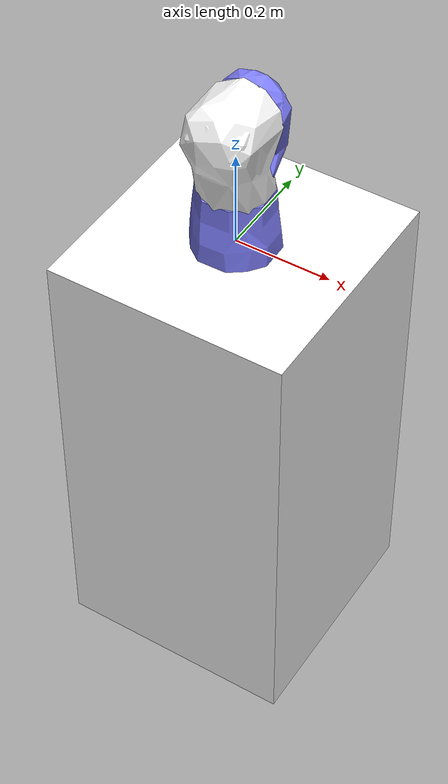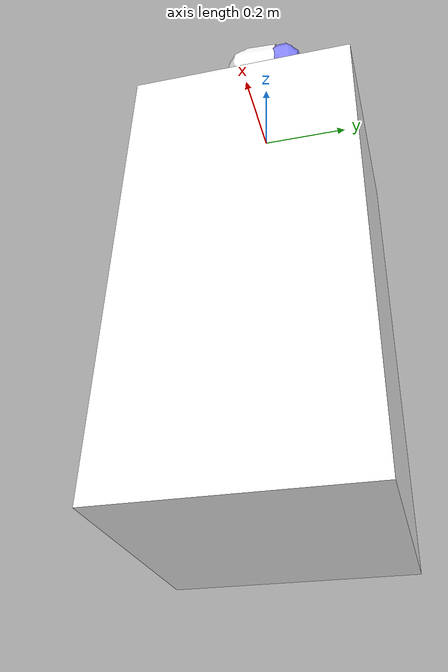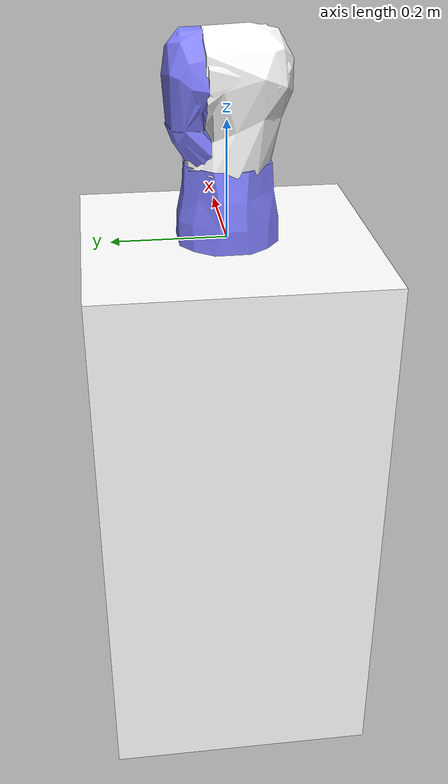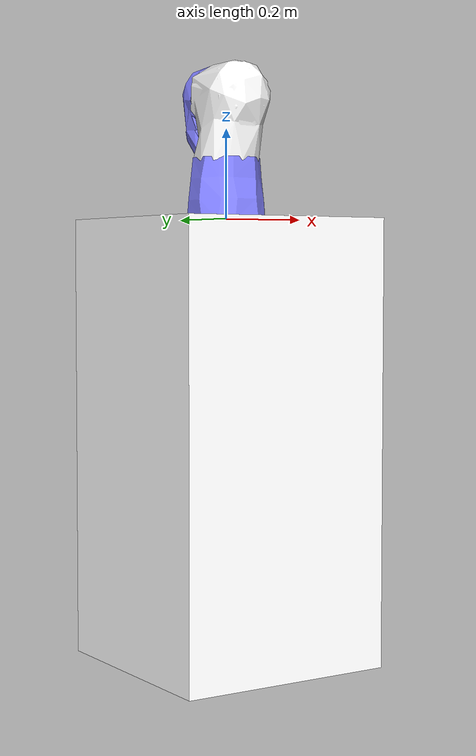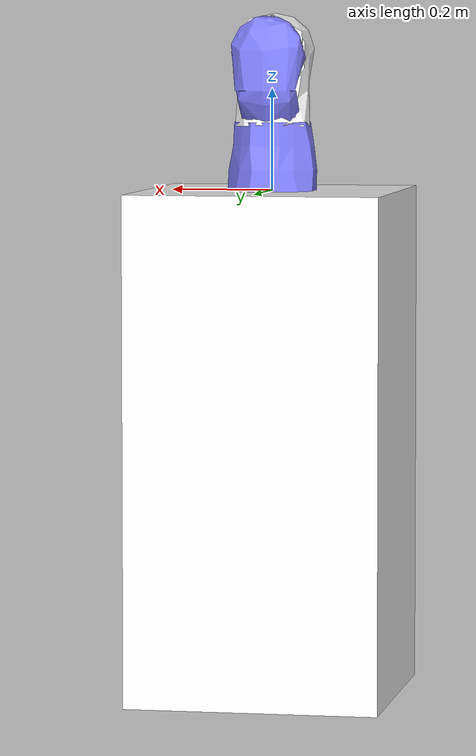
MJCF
<mujoco model="optimo">
  <compiler angle="radian" meshdir="../urdf/meshes/"/>
  <option gravity="0 0 -9.81" timestep="0.001" solver="Newton" tolerance="1e-12" impratio="60.0"/>

  <!-- Disable self-collision for robot geoms (meshes overlap at home config). -->
  <default>
    <geom contype="0" conaffinity="0"/>
  </default>

  <asset>
    <mesh name="col0" content_type="model/stl" file="col0.stl"/>
    <mesh name="col1" content_type="model/stl" file="col1.stl"/>
    <mesh name="col2" content_type="model/stl" file="col2.stl"/>
    <mesh name="col3" content_type="model/stl" file="col3.stl"/>
    <mesh name="col4" content_type="model/stl" file="col4.stl"/>
    <mesh name="col5" content_type="model/stl" file="col5.stl"/>
    <mesh name="col6" content_type="model/stl" file="col6.stl"/>
    <mesh name="col7" content_type="model/stl" file="col7.stl"/>
  </asset>

  <worldbody>
    <geom size="0.25 0.25 0.5" pos="0 0 -0.5" type="box" rgba="1 1 1 1"/>
    <geom pos="0 0 0.27" quat="1 0 0 0" type="mesh" rgba="0.5 0.5 1 1" mesh="col0"/>
    <body name="optimo_link1" pos="0 0 0.27">
      <inertial pos="0 -0.01549 -0.01635" mass="4.152" diaginertia="0.01 0.01 0.006"/>
      <joint name="optimo_joint1" pos="0 0 0" axis="0 0 1" range="-2.0944 2.0944" damping="0.4" frictionloss="0.2"/>
      <geom quat="0.707107 0.707107 0 0" type="mesh" rgba="1 1 1 1" mesh="col1"/>
      <body name="optimo_link2" quat="0.707107 0.707107 0 0">
        <inertial pos="0 -0.05677 -0.05063" quat="0.5 0.5 -0.5 0.5" mass="1.72" diaginertia="0.005 0.004 0.003"/>
        <joint name="optimo_joint2" pos="0 0 0" axis="0 0 1" range="1.0472 3.83972" damping="0.4" frictionloss="0.2"/>
        <geom quat="0.707107 0.707107 0 0" type="mesh" rgba="0.5 0.5 1 1" mesh="col2"/>
        <body name="optimo_link3" pos="0 -0.4 0" quat="0.707107 0.707107 0 0">
          <inertial pos="0 0 -0.098" mass="4.31" diaginertia="0.013 0.013 0.003"/>
          <joint name="optimo_joint3" pos="0 0 0" axis="0 0 1" range="-2.0944 2.0944" damping="0.3" frictionloss="0.2"/>
          <geom pos="0 0 0" quat="0.707107 -0.707107 0 0" type="mesh" rgba="1 1 1 1" mesh="col3"/>
          <body name="optimo_link4" quat="0.707107 -0.707107 0 0">
            <inertial pos="-1e-05 -0.0688 0.048852" quat="0.707107 0.707107 0 0" mass="1.09" diaginertia="0.004 0.004 0.0008"/>
            <joint name="optimo_joint4" pos="0 0 0" axis="0 0 1" range="-2.53073 2.53073" damping="0.3" frictionloss="0.2"/>
            <geom quat="0.707107 0.707107 0 0" type="mesh" rgba="0.5 0.5 1 1" mesh="col4"/>
            <body name="optimo_link5" pos="0 -0.4 0" quat="0.707107 0.707107 0 0">
              <inertial pos="0 0.008 -0.085" mass="2.23" diaginertia="0.005 0.005 0.002"/>
              <joint name="optimo_joint5" pos="0 0 0" axis="0 0 1" range="-2.61799 2.61799" damping="0.1" frictionloss="0.4"/>
              <geom pos="0 0 0" quat="0.707107 -0.707107 0 0" type="mesh" rgba="1 1 1 1" mesh="col5"/>
              <body name="optimo_link6" quat="0.707107 -0.707107 0 0">
                <inertial pos="0 -0.010855 0" mass="1.138" diaginertia="0.0006 0.0006 0.0005"/>
                <joint name="optimo_joint6" pos="0 0 0" axis="0 0 1" range="-2.0944 2.0944" damping="0.1" frictionloss="0.4"/>
                <geom quat="0.707107 0.707107 0 0" type="mesh" rgba="0.5 0.5 1 1" mesh="col6"/>
                <body name="optimo_link7" quat="0.707107 0.707107 0 0">
                  <inertial pos="0 0 0.1" mass="0.88" diaginertia="0.0007 0.0007 0.0003"/>
                  <joint name="optimo_joint7" pos="0 0 0" axis="0 0 1" range="-2.0944 2.0944" damping="0.1" frictionloss="0.4"/>
                  <geom type="mesh" rgba="1 1 1 1" mesh="col7"/>
                </body>
              </body>
            </body>
          </body>
        </body>
      </body>
    </body>
  </worldbody>

  <keyframe>
    <key name="spawn_home" qpos="0 3.14159 0 0 0 0 0"/>
  </keyframe>

  <actuator>
    <motor name="optimo_joint1_motor" joint="optimo_joint1" gear="1" ctrllimited="true" ctrlrange="-79 79" forcelimited="true" forcerange="-79 79"/>
    <motor name="optimo_joint2_motor" joint="optimo_joint2" gear="1" ctrllimited="true" ctrlrange="-95 95" forcelimited="true" forcerange="-95 95"/>
    <motor name="optimo_joint3_motor" joint="optimo_joint3" gear="1" ctrllimited="true" ctrlrange="-32 32" forcelimited="true" forcerange="-32 32"/>
    <motor name="optimo_joint4_motor" joint="optimo_joint4" gear="1" ctrllimited="true" ctrlrange="-40 40" forcelimited="true" forcerange="-40 40"/>
    <motor name="optimo_joint5_motor" joint="optimo_joint5" gear="1" ctrllimited="true" ctrlrange="-15 15" forcelimited="true" forcerange="-15 15"/>
    <motor name="optimo_joint6_motor" joint="optimo_joint6" gear="1" ctrllimited="true" ctrlrange="-15 15" forcelimited="true" forcerange="-15 15"/>
    <motor name="optimo_joint7_motor" joint="optimo_joint7" gear="1" ctrllimited="true" ctrlrange="-15 15" forcelimited="true" forcerange="-15 15"/>
  </actuator>

  <sensor>
    <jointpos name="optimo_joint1_pos" joint="optimo_joint1" noise="2e-4"/>
    <jointpos name="optimo_joint2_pos" joint="optimo_joint2" noise="2e-4"/>
    <jointpos name="optimo_joint3_pos" joint="optimo_joint3" noise="2e-4"/>
    <jointpos name="optimo_joint4_pos" joint="optimo_joint4" noise="2e-4"/>
    <jointpos name="optimo_joint5_pos" joint="optimo_joint5" noise="2e-4"/>
    <jointpos name="optimo_joint6_pos" joint="optimo_joint6" noise="2e-4"/>
    <jointpos name="optimo_joint7_pos" joint="optimo_joint7" noise="2e-4"/>

    <jointvel name="optimo_joint1_vel" joint="optimo_joint1" noise="1e-2"/>
    <jointvel name="optimo_joint2_vel" joint="optimo_joint2" noise="1e-2"/>
    <jointvel name="optimo_joint3_vel" joint="optimo_joint3" noise="1e-2"/>
    <jointvel name="optimo_joint4_vel" joint="optimo_joint4" noise="1e-2"/>
    <jointvel name="optimo_joint5_vel" joint="optimo_joint5" noise="1e-2"/>
    <jointvel name="optimo_joint6_vel" joint="optimo_joint6" noise="1e-2"/>
    <jointvel name="optimo_joint7_vel" joint="optimo_joint7" noise="1e-2"/>
  </sensor>
</mujoco>
